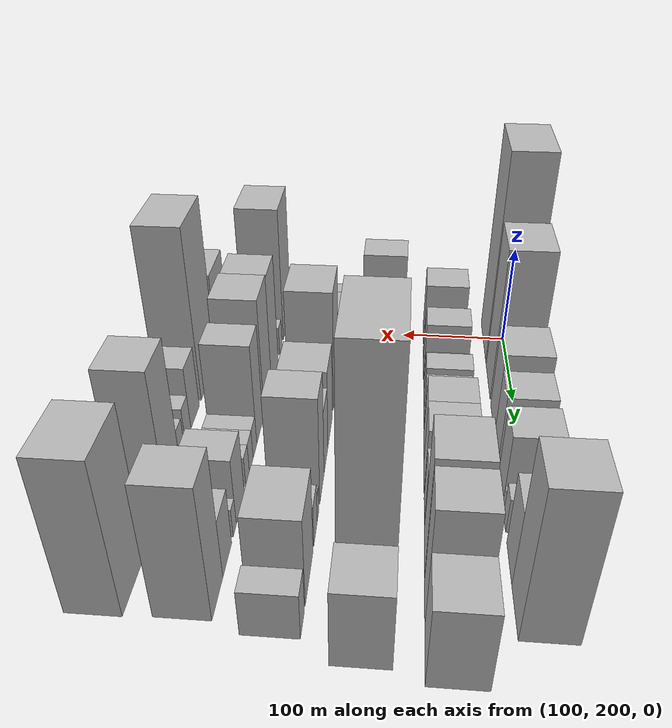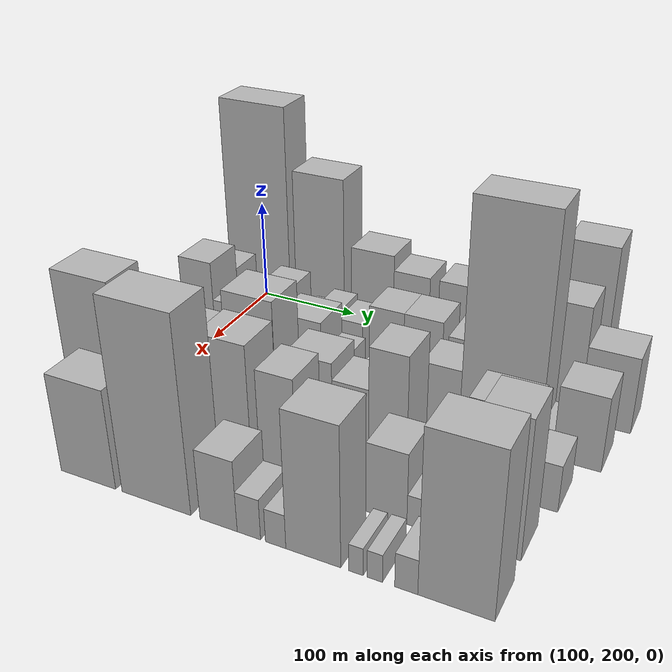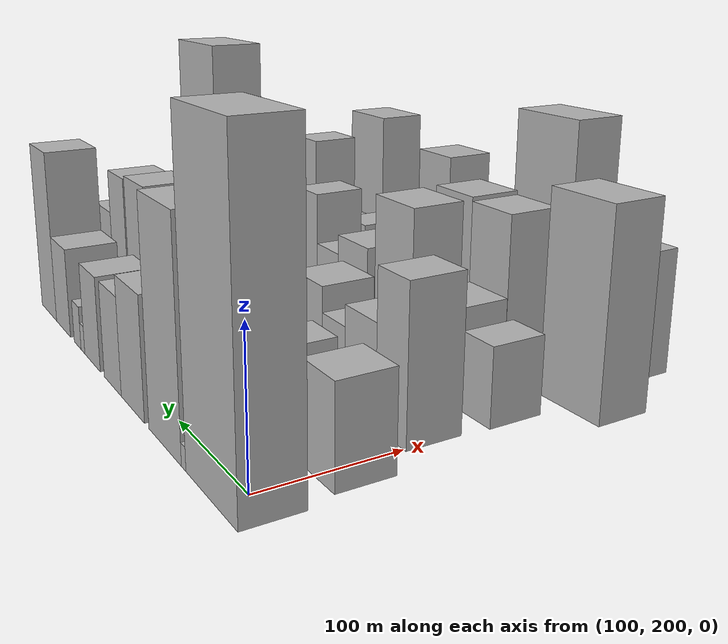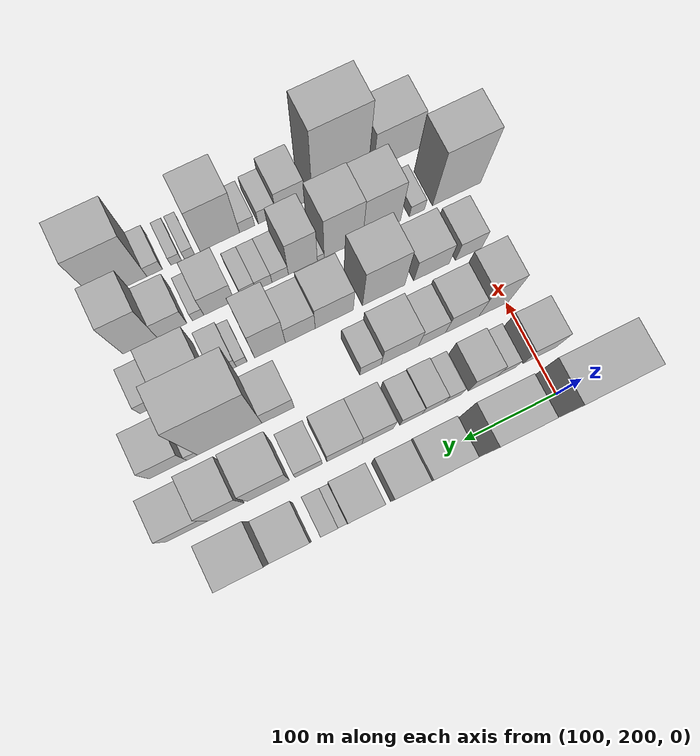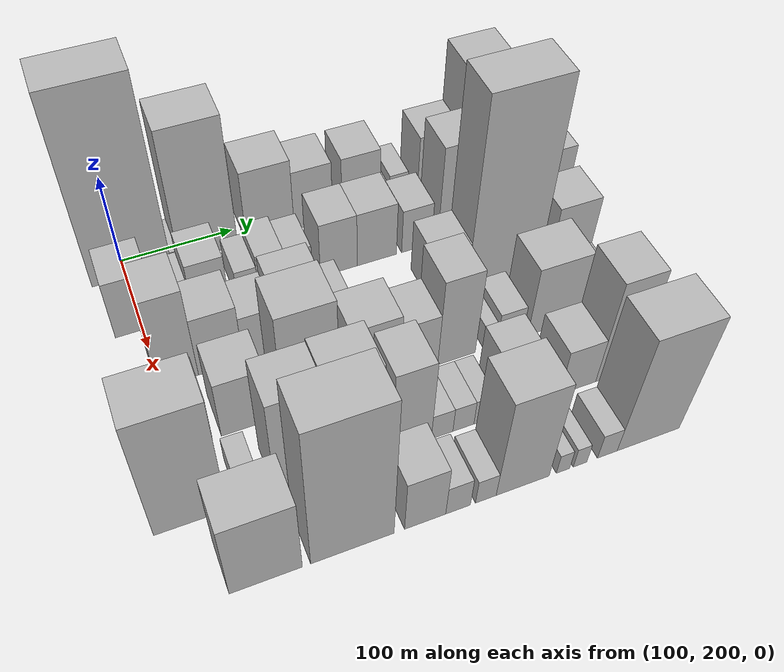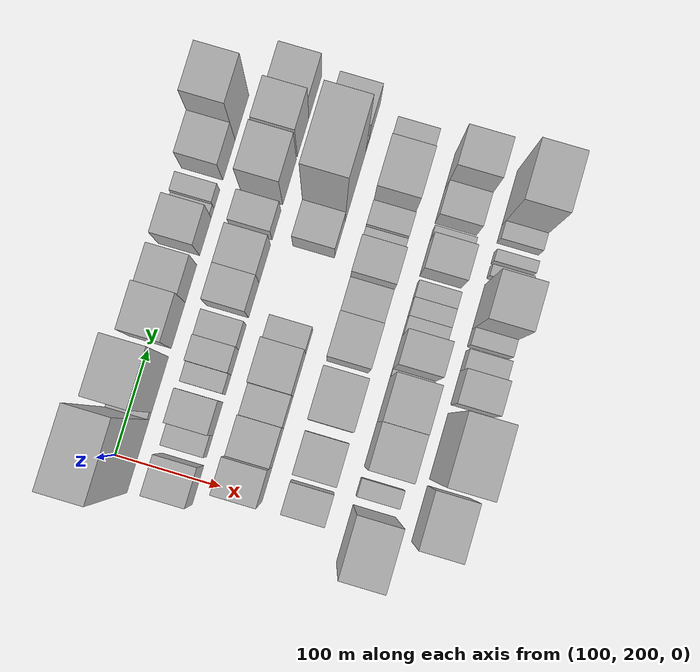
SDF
<sdf version="1.6">
 <world name="default">
  <model name="building_30">
   <static>1</static>
   <pose>100.0000 205.2229 0 0.000000 0.000000 0.000000</pose>
   <link name="link">
    <pose>0 0 105.00 0 0 0</pose>
    <collision name="collision"><geometry><box><size>40.0000 69.0760 210.0000</size></box></geometry></collision>
    <visual name="visual">
     <cast_shadows>0</cast_shadows>
     <geometry><box><size>40.0000 69.0760 210.0000</size></box></geometry>
     <material>
      <script>
       <uri>model://HANNAS_wall/materials/scripts</uri>
       <uri>model://HANNAS_wall/materials/textures</uri>
       <name>vrc/HANNAS_wall</name>
      </script>
     </material>
    </visual>
   </link>
  </model>
  <model name="building_31">
   <static>1</static>
   <pose>100.0000 243.1229 0 0.000000 0.000000 0.000000</pose>
   <link name="link">
    <pose>0 0 7.50 0 0 0</pose>
    <collision name="collision"><geometry><box><size>40.0000 6.7242 15.0000</size></box></geometry></collision>
    <visual name="visual">
     <cast_shadows>0</cast_shadows>
     <geometry><box><size>40.0000 6.7242 15.0000</size></box></geometry>
     <material>
      <script>
       <uri>model://HANNAS_wall/materials/scripts</uri>
       <uri>model://HANNAS_wall/materials/textures</uri>
       <name>vrc/HANNAS_wall</name>
      </script>
     </material>
    </visual>
   </link>
  </model>
  <model name="building_32">
   <static>1</static>
   <pose>100.0000 273.0305 0 0.000000 0.000000 0.000000</pose>
   <link name="link">
    <pose>0 0 75.00 0 0 0</pose>
    <collision name="collision"><geometry><box><size>40.0000 53.0909 150.0000</size></box></geometry></collision>
    <visual name="visual">
     <cast_shadows>0</cast_shadows>
     <geometry><box><size>40.0000 53.0909 150.0000</size></box></geometry>
     <material>
      <script>
       <uri>model://HANNAS_wall/materials/scripts</uri>
       <uri>model://HANNAS_wall/materials/textures</uri>
       <name>vrc/HANNAS_wall</name>
      </script>
     </material>
    </visual>
   </link>
  </model>
  <model name="building_33">
   <static>1</static>
   <pose>100.0000 329.7038 0 0.000000 0.000000 0.000000</pose>
   <link name="link">
    <pose>0 0 42.00 0 0 0</pose>
    <collision name="collision"><geometry><box><size>40.0000 44.2558 84.0000</size></box></geometry></collision>
    <visual name="visual">
     <cast_shadows>0</cast_shadows>
     <geometry><box><size>40.0000 44.2558 84.0000</size></box></geometry>
     <material>
      <script>
       <uri>model://HANNAS_wall/materials/scripts</uri>
       <uri>model://HANNAS_wall/materials/textures</uri>
       <name>vrc/HANNAS_wall</name>
      </script>
     </material>
    </visual>
   </link>
  </model>
  <model name="building_34">
   <static>1</static>
   <pose>100.0000 370.0031 0 0.000000 0.000000 0.000000</pose>
   <link name="link">
    <pose>0 0 34.50 0 0 0</pose>
    <collision name="collision"><geometry><box><size>40.0000 36.3429 69.0000</size></box></geometry></collision>
    <visual name="visual">
     <cast_shadows>0</cast_shadows>
     <geometry><box><size>40.0000 36.3429 69.0000</size></box></geometry>
     <material>
      <script>
       <uri>model://HANNAS_wall/materials/scripts</uri>
       <uri>model://HANNAS_wall/materials/textures</uri>
       <name>vrc/HANNAS_wall</name>
      </script>
     </material>
    </visual>
   </link>
  </model>
  <model name="building_35">
   <static>1</static>
   <pose>100.0000 415.5431 0 0.000000 0.000000 0.000000</pose>
   <link name="link">
    <pose>0 0 34.50 0 0 0</pose>
    <collision name="collision"><geometry><box><size>40.0000 36.7370 69.0000</size></box></geometry></collision>
    <visual name="visual">
     <cast_shadows>0</cast_shadows>
     <geometry><box><size>40.0000 36.7370 69.0000</size></box></geometry>
     <material>
      <script>
       <uri>model://HANNAS_wall/materials/scripts</uri>
       <uri>model://HANNAS_wall/materials/textures</uri>
       <name>vrc/HANNAS_wall</name>
      </script>
     </material>
    </visual>
   </link>
  </model>
  <model name="building_36">
   <static>1</static>
   <pose>100.0000 438.5779 0 0.000000 0.000000 0.000000</pose>
   <link name="link">
    <pose>0 0 10.50 0 0 0</pose>
    <collision name="collision"><geometry><box><size>40.0000 9.3328 21.0000</size></box></geometry></collision>
    <visual name="visual">
     <cast_shadows>0</cast_shadows>
     <geometry><box><size>40.0000 9.3328 21.0000</size></box></geometry>
     <material>
      <script>
       <uri>model://HANNAS_wall/materials/scripts</uri>
       <uri>model://HANNAS_wall/materials/textures</uri>
       <name>vrc/HANNAS_wall</name>
      </script>
     </material>
    </visual>
   </link>
  </model>
  <model name="building_37">
   <static>1</static>
   <pose>100.0000 452.0963 0 0.000000 0.000000 0.000000</pose>
   <link name="link">
    <pose>0 0 16.50 0 0 0</pose>
    <collision name="collision"><geometry><box><size>40.0000 17.7041 33.0000</size></box></geometry></collision>
    <visual name="visual">
     <cast_shadows>0</cast_shadows>
     <geometry><box><size>40.0000 17.7041 33.0000</size></box></geometry>
     <material>
      <script>
       <uri>model://HANNAS_wall/materials/scripts</uri>
       <uri>model://HANNAS_wall/materials/textures</uri>
       <name>vrc/HANNAS_wall</name>
      </script>
     </material>
    </visual>
   </link>
  </model>
  <model name="building_38">
   <static>1</static>
   <pose>100.0000 490.6179 0 0.000000 0.000000 0.000000</pose>
   <link name="link">
    <pose>0 0 34.50 0 0 0</pose>
    <collision name="collision"><geometry><box><size>40.0000 39.3390 69.0000</size></box></geometry></collision>
    <visual name="visual">
     <cast_shadows>0</cast_shadows>
     <geometry><box><size>40.0000 39.3390 69.0000</size></box></geometry>
     <material>
      <script>
       <uri>model://HANNAS_wall/materials/scripts</uri>
       <uri>model://HANNAS_wall/materials/textures</uri>
       <name>vrc/HANNAS_wall</name>
      </script>
     </material>
    </visual>
   </link>
  </model>
  <model name="building_39">
   <static>1</static>
   <pose>100.0000 532.4192 0 0.000000 0.000000 0.000000</pose>
   <link name="link">
    <pose>0 0 67.50 0 0 0</pose>
    <collision name="collision"><geometry><box><size>40.0000 44.2637 135.0000</size></box></geometry></collision>
    <visual name="visual">
     <cast_shadows>0</cast_shadows>
     <geometry><box><size>40.0000 44.2637 135.0000</size></box></geometry>
     <material>
      <script>
       <uri>model://HANNAS_wall/materials/scripts</uri>
       <uri>model://HANNAS_wall/materials/textures</uri>
       <name>vrc/HANNAS_wall</name>
      </script>
     </material>
    </visual>
   </link>
  </model>
  <model name="building_85">
   <static>1</static>
   <pose>160.0000 195.7724 0 0.000000 0.000000 0.000000</pose>
   <link name="link">
    <pose>0 0 33.00 0 0 0</pose>
    <collision name="collision"><geometry><box><size>40.0000 36.7277 66.0000</size></box></geometry></collision>
    <visual name="visual">
     <cast_shadows>0</cast_shadows>
     <geometry><box><size>40.0000 36.7277 66.0000</size></box></geometry>
     <material>
      <script>
       <uri>model://HANNAS_wall/materials/scripts</uri>
       <uri>model://HANNAS_wall/materials/textures</uri>
       <name>vrc/HANNAS_wall</name>
      </script>
     </material>
    </visual>
   </link>
  </model>
  <model name="building_86">
   <static>1</static>
   <pose>160.0000 232.3664 0 0.000000 0.000000 0.000000</pose>
   <link name="link">
    <pose>0 0 18.00 0 0 0</pose>
    <collision name="collision"><geometry><box><size>40.0000 20.4603 36.0000</size></box></geometry></collision>
    <visual name="visual">
     <cast_shadows>0</cast_shadows>
     <geometry><box><size>40.0000 20.4603 36.0000</size></box></geometry>
     <material>
      <script>
       <uri>model://HANNAS_wall/materials/scripts</uri>
       <uri>model://HANNAS_wall/materials/textures</uri>
       <name>vrc/HANNAS_wall</name>
      </script>
     </material>
    </visual>
   </link>
  </model>
  <model name="building_87">
   <static>1</static>
   <pose>160.0000 258.3127 0 0.000000 0.000000 0.000000</pose>
   <link name="link">
    <pose>0 0 30.00 0 0 0</pose>
    <collision name="collision"><geometry><box><size>40.0000 31.4322 60.0000</size></box></geometry></collision>
    <visual name="visual">
     <cast_shadows>0</cast_shadows>
     <geometry><box><size>40.0000 31.4322 60.0000</size></box></geometry>
     <material>
      <script>
       <uri>model://HANNAS_wall/materials/scripts</uri>
       <uri>model://HANNAS_wall/materials/textures</uri>
       <name>vrc/HANNAS_wall</name>
      </script>
     </material>
    </visual>
   </link>
  </model>
  <model name="building_88">
   <static>1</static>
   <pose>160.0000 290.3565 0 0.000000 0.000000 0.000000</pose>
   <link name="link">
    <pose>0 0 18.00 0 0 0</pose>
    <collision name="collision"><geometry><box><size>40.0000 18.6553 36.0000</size></box></geometry></collision>
    <visual name="visual">
     <cast_shadows>0</cast_shadows>
     <geometry><box><size>40.0000 18.6553 36.0000</size></box></geometry>
     <material>
      <script>
       <uri>model://HANNAS_wall/materials/scripts</uri>
       <uri>model://HANNAS_wall/materials/textures</uri>
       <name>vrc/HANNAS_wall</name>
      </script>
     </material>
    </visual>
   </link>
  </model>
  <model name="building_89">
   <static>1</static>
   <pose>160.0000 311.7217 0 0.000000 0.000000 0.000000</pose>
   <link name="link">
    <pose>0 0 24.00 0 0 0</pose>
    <collision name="collision"><geometry><box><size>40.0000 24.0751 48.0000</size></box></geometry></collision>
    <visual name="visual">
     <cast_shadows>0</cast_shadows>
     <geometry><box><size>40.0000 24.0751 48.0000</size></box></geometry>
     <material>
      <script>
       <uri>model://HANNAS_wall/materials/scripts</uri>
       <uri>model://HANNAS_wall/materials/textures</uri>
       <name>vrc/HANNAS_wall</name>
      </script>
     </material>
    </visual>
   </link>
  </model>
  <model name="building_90">
   <static>1</static>
   <pose>160.0000 335.7369 0 0.000000 0.000000 0.000000</pose>
   <link name="link">
    <pose>0 0 21.00 0 0 0</pose>
    <collision name="collision"><geometry><box><size>40.0000 23.9553 42.0000</size></box></geometry></collision>
    <visual name="visual">
     <cast_shadows>0</cast_shadows>
     <geometry><box><size>40.0000 23.9553 42.0000</size></box></geometry>
     <material>
      <script>
       <uri>model://HANNAS_wall/materials/scripts</uri>
       <uri>model://HANNAS_wall/materials/textures</uri>
       <name>vrc/HANNAS_wall</name>
      </script>
     </material>
    </visual>
   </link>
  </model>
  <model name="building_91">
   <static>1</static>
   <pose>160.0000 371.5109 0 0.000000 0.000000 0.000000</pose>
   <link name="link">
    <pose>0 0 31.50 0 0 0</pose>
    <collision name="collision"><geometry><box><size>40.0000 33.5928 63.0000</size></box></geometry></collision>
    <visual name="visual">
     <cast_shadows>0</cast_shadows>
     <geometry><box><size>40.0000 33.5928 63.0000</size></box></geometry>
     <material>
      <script>
       <uri>model://HANNAS_wall/materials/scripts</uri>
       <uri>model://HANNAS_wall/materials/textures</uri>
       <name>vrc/HANNAS_wall</name>
      </script>
     </material>
    </visual>
   </link>
  </model>
  <model name="building_92">
   <static>1</static>
   <pose>160.0000 406.6775 0 0.000000 0.000000 0.000000</pose>
   <link name="link">
    <pose>0 0 31.50 0 0 0</pose>
    <collision name="collision"><geometry><box><size>40.0000 36.7403 63.0000</size></box></geometry></collision>
    <visual name="visual">
     <cast_shadows>0</cast_shadows>
     <geometry><box><size>40.0000 36.7403 63.0000</size></box></geometry>
     <material>
      <script>
       <uri>model://HANNAS_wall/materials/scripts</uri>
       <uri>model://HANNAS_wall/materials/textures</uri>
       <name>vrc/HANNAS_wall</name>
      </script>
     </material>
    </visual>
   </link>
  </model>
  <model name="building_93">
   <static>1</static>
   <pose>160.0000 444.2434 0 0.000000 0.000000 0.000000</pose>
   <link name="link">
    <pose>0 0 25.50 0 0 0</pose>
    <collision name="collision"><geometry><box><size>40.0000 28.3917 51.0000</size></box></geometry></collision>
    <visual name="visual">
     <cast_shadows>0</cast_shadows>
     <geometry><box><size>40.0000 28.3917 51.0000</size></box></geometry>
     <material>
      <script>
       <uri>model://HANNAS_wall/materials/scripts</uri>
       <uri>model://HANNAS_wall/materials/textures</uri>
       <name>vrc/HANNAS_wall</name>
      </script>
     </material>
    </visual>
   </link>
  </model>
  <model name="building_94">
   <static>1</static>
   <pose>160.0000 486.4557 0 0.000000 0.000000 0.000000</pose>
   <link name="link">
    <pose>0 0 55.50 0 0 0</pose>
    <collision name="collision"><geometry><box><size>40.0000 44.0329 111.0000</size></box></geometry></collision>
    <visual name="visual">
     <cast_shadows>0</cast_shadows>
     <geometry><box><size>40.0000 44.0329 111.0000</size></box></geometry>
     <material>
      <script>
       <uri>model://HANNAS_wall/materials/scripts</uri>
       <uri>model://HANNAS_wall/materials/textures</uri>
       <name>vrc/HANNAS_wall</name>
      </script>
     </material>
    </visual>
   </link>
  </model>
  <model name="building_95">
   <static>1</static>
   <pose>160.0000 530.3487 0 0.000000 0.000000 0.000000</pose>
   <link name="link">
    <pose>0 0 54.00 0 0 0</pose>
    <collision name="collision"><geometry><box><size>40.0000 37.7530 108.0000</size></box></geometry></collision>
    <visual name="visual">
     <cast_shadows>0</cast_shadows>
     <geometry><box><size>40.0000 37.7530 108.0000</size></box></geometry>
     <material>
      <script>
       <uri>model://HANNAS_wall/materials/scripts</uri>
       <uri>model://HANNAS_wall/materials/textures</uri>
       <name>vrc/HANNAS_wall</name>
      </script>
     </material>
    </visual>
   </link>
  </model>
  <model name="building_96">
   <static>1</static>
   <pose>160.0000 570.6034 0 0.000000 0.000000 0.000000</pose>
   <link name="link">
    <pose>0 0 36.00 0 0 0</pose>
    <collision name="collision"><geometry><box><size>40.0000 42.7565 72.0000</size></box></geometry></collision>
    <visual name="visual">
     <cast_shadows>0</cast_shadows>
     <geometry><box><size>40.0000 42.7565 72.0000</size></box></geometry>
     <material>
      <script>
       <uri>model://HANNAS_wall/materials/scripts</uri>
       <uri>model://HANNAS_wall/materials/textures</uri>
       <name>vrc/HANNAS_wall</name>
      </script>
     </material>
    </visual>
   </link>
  </model>
  <model name="building_144">
   <static>1</static>
   <pose>220.0000 214.1536 0 0.000000 0.000000 0.000000</pose>
   <link name="link">
    <pose>0 0 52.50 0 0 0</pose>
    <collision name="collision"><geometry><box><size>40.0000 32.9572 105.0000</size></box></geometry></collision>
    <visual name="visual">
     <cast_shadows>0</cast_shadows>
     <geometry><box><size>40.0000 32.9572 105.0000</size></box></geometry>
     <material>
      <script>
       <uri>model://HANNAS_wall/materials/scripts</uri>
       <uri>model://HANNAS_wall/materials/textures</uri>
       <name>vrc/HANNAS_wall</name>
      </script>
     </material>
    </visual>
   </link>
  </model>
  <model name="building_145">
   <static>1</static>
   <pose>220.0000 249.0375 0 0.000000 0.000000 0.000000</pose>
   <link name="link">
    <pose>0 0 34.50 0 0 0</pose>
    <collision name="collision"><geometry><box><size>40.0000 36.8106 69.0000</size></box></geometry></collision>
    <visual name="visual">
     <cast_shadows>0</cast_shadows>
     <geometry><box><size>40.0000 36.8106 69.0000</size></box></geometry>
     <material>
      <script>
       <uri>model://HANNAS_wall/materials/scripts</uri>
       <uri>model://HANNAS_wall/materials/textures</uri>
       <name>vrc/HANNAS_wall</name>
      </script>
     </material>
    </visual>
   </link>
  </model>
  <model name="building_146">
   <static>1</static>
   <pose>220.0000 282.0529 0 0.000000 0.000000 0.000000</pose>
   <link name="link">
    <pose>0 0 27.00 0 0 0</pose>
    <collision name="collision"><geometry><box><size>40.0000 29.2202 54.0000</size></box></geometry></collision>
    <visual name="visual">
     <cast_shadows>0</cast_shadows>
     <geometry><box><size>40.0000 29.2202 54.0000</size></box></geometry>
     <material>
      <script>
       <uri>model://HANNAS_wall/materials/scripts</uri>
       <uri>model://HANNAS_wall/materials/textures</uri>
       <name>vrc/HANNAS_wall</name>
      </script>
     </material>
    </visual>
   </link>
  </model>
  <model name="building_147">
   <static>1</static>
   <pose>220.0000 317.0408 0 0.000000 0.000000 0.000000</pose>
   <link name="link">
    <pose>0 0 36.00 0 0 0</pose>
    <collision name="collision"><geometry><box><size>40.0000 40.7558 72.0000</size></box></geometry></collision>
    <visual name="visual">
     <cast_shadows>0</cast_shadows>
     <geometry><box><size>40.0000 40.7558 72.0000</size></box></geometry>
     <material>
      <script>
       <uri>model://HANNAS_wall/materials/scripts</uri>
       <uri>model://HANNAS_wall/materials/textures</uri>
       <name>vrc/HANNAS_wall</name>
      </script>
     </material>
    </visual>
   </link>
  </model>
  <model name="building_148">
   <static>1</static>
   <pose>220.0000 348.8580 0 0.000000 0.000000 0.000000</pose>
   <link name="link">
    <pose>0 0 21.00 0 0 0</pose>
    <collision name="collision"><geometry><box><size>40.0000 22.8786 42.0000</size></box></geometry></collision>
    <visual name="visual">
     <cast_shadows>0</cast_shadows>
     <geometry><box><size>40.0000 22.8786 42.0000</size></box></geometry>
     <material>
      <script>
       <uri>model://HANNAS_wall/materials/scripts</uri>
       <uri>model://HANNAS_wall/materials/textures</uri>
       <name>vrc/HANNAS_wall</name>
      </script>
     </material>
    </visual>
   </link>
  </model>
  <model name="building_149">
   <static>1</static>
   <pose>220.0000 447.3323 0 0.000000 0.000000 0.000000</pose>
   <link name="link">
    <pose>0 0 30.00 0 0 0</pose>
    <collision name="collision"><geometry><box><size>40.0000 34.0234 60.0000</size></box></geometry></collision>
    <visual name="visual">
     <cast_shadows>0</cast_shadows>
     <geometry><box><size>40.0000 34.0234 60.0000</size></box></geometry>
     <material>
      <script>
       <uri>model://HANNAS_wall/materials/scripts</uri>
       <uri>model://HANNAS_wall/materials/textures</uri>
       <name>vrc/HANNAS_wall</name>
      </script>
     </material>
    </visual>
   </link>
  </model>
  <model name="building_150">
   <static>1</static>
   <pose>220.0000 498.2375 0 0.000000 0.000000 0.000000</pose>
   <link name="link">
    <pose>0 0 106.50 0 0 0</pose>
    <collision name="collision"><geometry><box><size>40.0000 67.7870 213.0000</size></box></geometry></collision>
    <visual name="visual">
     <cast_shadows>0</cast_shadows>
     <geometry><box><size>40.0000 67.7870 213.0000</size></box></geometry>
     <material>
      <script>
       <uri>model://HANNAS_wall/materials/scripts</uri>
       <uri>model://HANNAS_wall/materials/textures</uri>
       <name>vrc/HANNAS_wall</name>
      </script>
     </material>
    </visual>
   </link>
  </model>
  <model name="building_151">
   <static>1</static>
   <pose>220.0000 537.6468 0 0.000000 0.000000 0.000000</pose>
   <link name="link">
    <pose>0 0 13.50 0 0 0</pose>
    <collision name="collision"><geometry><box><size>40.0000 11.0316 27.0000</size></box></geometry></collision>
    <visual name="visual">
     <cast_shadows>0</cast_shadows>
     <geometry><box><size>40.0000 11.0316 27.0000</size></box></geometry>
     <material>
      <script>
       <uri>model://HANNAS_wall/materials/scripts</uri>
       <uri>model://HANNAS_wall/materials/textures</uri>
       <name>vrc/HANNAS_wall</name>
      </script>
     </material>
    </visual>
   </link>
  </model>
  <model name="building_152">
   <static>1</static>
   <pose>220.0000 562.6870 0 0.000000 0.000000 0.000000</pose>
   <link name="link">
    <pose>0 0 34.50 0 0 0</pose>
    <collision name="collision"><geometry><box><size>40.0000 39.0488 69.0000</size></box></geometry></collision>
    <visual name="visual">
     <cast_shadows>0</cast_shadows>
     <geometry><box><size>40.0000 39.0488 69.0000</size></box></geometry>
     <material>
      <script>
       <uri>model://HANNAS_wall/materials/scripts</uri>
       <uri>model://HANNAS_wall/materials/textures</uri>
       <name>vrc/HANNAS_wall</name>
      </script>
     </material>
    </visual>
   </link>
  </model>
  <model name="building_195">
   <static>1</static>
   <pose>280.0000 210.0441 0 0.000000 0.000000 0.000000</pose>
   <link name="link">
    <pose>0 0 27.00 0 0 0</pose>
    <collision name="collision"><geometry><box><size>40.0000 29.4144 54.0000</size></box></geometry></collision>
    <visual name="visual">
     <cast_shadows>0</cast_shadows>
     <geometry><box><size>40.0000 29.4144 54.0000</size></box></geometry>
     <material>
      <script>
       <uri>model://HANNAS_wall/materials/scripts</uri>
       <uri>model://HANNAS_wall/materials/textures</uri>
       <name>vrc/HANNAS_wall</name>
      </script>
     </material>
    </visual>
   </link>
  </model>
  <model name="building_196">
   <static>1</static>
   <pose>280.0000 251.2986 0 0.000000 0.000000 0.000000</pose>
   <link name="link">
    <pose>0 0 33.00 0 0 0</pose>
    <collision name="collision"><geometry><box><size>40.0000 39.0946 66.0000</size></box></geometry></collision>
    <visual name="visual">
     <cast_shadows>0</cast_shadows>
     <geometry><box><size>40.0000 39.0946 66.0000</size></box></geometry>
     <material>
      <script>
       <uri>model://HANNAS_wall/materials/scripts</uri>
       <uri>model://HANNAS_wall/materials/textures</uri>
       <name>vrc/HANNAS_wall</name>
      </script>
     </material>
    </visual>
   </link>
  </model>
  <model name="building_197">
   <static>1</static>
   <pose>280.0000 303.9945 0 0.000000 0.000000 0.000000</pose>
   <link name="link">
    <pose>0 0 60.00 0 0 0</pose>
    <collision name="collision"><geometry><box><size>40.0000 46.2973 120.0000</size></box></geometry></collision>
    <visual name="visual">
     <cast_shadows>0</cast_shadows>
     <geometry><box><size>40.0000 46.2973 120.0000</size></box></geometry>
     <material>
      <script>
       <uri>model://HANNAS_wall/materials/scripts</uri>
       <uri>model://HANNAS_wall/materials/textures</uri>
       <name>vrc/HANNAS_wall</name>
      </script>
     </material>
    </visual>
   </link>
  </model>
  <model name="building_198">
   <static>1</static>
   <pose>280.0000 357.7525 0 0.000000 0.000000 0.000000</pose>
   <link name="link">
    <pose>0 0 39.00 0 0 0</pose>
    <collision name="collision"><geometry><box><size>40.0000 41.2187 78.0000</size></box></geometry></collision>
    <visual name="visual">
     <cast_shadows>0</cast_shadows>
     <geometry><box><size>40.0000 41.2187 78.0000</size></box></geometry>
     <material>
      <script>
       <uri>model://HANNAS_wall/materials/scripts</uri>
       <uri>model://HANNAS_wall/materials/textures</uri>
       <name>vrc/HANNAS_wall</name>
      </script>
     </material>
    </visual>
   </link>
  </model>
  <model name="building_199">
   <static>1</static>
   <pose>280.0000 394.4017 0 0.000000 0.000000 0.000000</pose>
   <link name="link">
    <pose>0 0 31.50 0 0 0</pose>
    <collision name="collision"><geometry><box><size>40.0000 32.0796 63.0000</size></box></geometry></collision>
    <visual name="visual">
     <cast_shadows>0</cast_shadows>
     <geometry><box><size>40.0000 32.0796 63.0000</size></box></geometry>
     <material>
      <script>
       <uri>model://HANNAS_wall/materials/scripts</uri>
       <uri>model://HANNAS_wall/materials/textures</uri>
       <name>vrc/HANNAS_wall</name>
      </script>
     </material>
    </visual>
   </link>
  </model>
  <model name="building_200">
   <static>1</static>
   <pose>280.0000 426.9178 0 0.000000 0.000000 0.000000</pose>
   <link name="link">
    <pose>0 0 51.00 0 0 0</pose>
    <collision name="collision"><geometry><box><size>40.0000 32.9526 102.0000</size></box></geometry></collision>
    <visual name="visual">
     <cast_shadows>0</cast_shadows>
     <geometry><box><size>40.0000 32.9526 102.0000</size></box></geometry>
     <material>
      <script>
       <uri>model://HANNAS_wall/materials/scripts</uri>
       <uri>model://HANNAS_wall/materials/textures</uri>
       <name>vrc/HANNAS_wall</name>
      </script>
     </material>
    </visual>
   </link>
  </model>
  <model name="building_201">
   <static>1</static>
   <pose>280.0000 457.0982 0 0.000000 0.000000 0.000000</pose>
   <link name="link">
    <pose>0 0 13.50 0 0 0</pose>
    <collision name="collision"><geometry><box><size>40.0000 11.4082 27.0000</size></box></geometry></collision>
    <visual name="visual">
     <cast_shadows>0</cast_shadows>
     <geometry><box><size>40.0000 11.4082 27.0000</size></box></geometry>
     <material>
      <script>
       <uri>model://HANNAS_wall/materials/scripts</uri>
       <uri>model://HANNAS_wall/materials/textures</uri>
       <name>vrc/HANNAS_wall</name>
      </script>
     </material>
    </visual>
   </link>
  </model>
  <model name="building_202">
   <static>1</static>
   <pose>280.0000 474.3703 0 0.000000 0.000000 0.000000</pose>
   <link name="link">
    <pose>0 0 19.50 0 0 0</pose>
    <collision name="collision"><geometry><box><size>40.0000 23.1361 39.0000</size></box></geometry></collision>
    <visual name="visual">
     <cast_shadows>0</cast_shadows>
     <geometry><box><size>40.0000 23.1361 39.0000</size></box></geometry>
     <material>
      <script>
       <uri>model://HANNAS_wall/materials/scripts</uri>
       <uri>model://HANNAS_wall/materials/textures</uri>
       <name>vrc/HANNAS_wall</name>
      </script>
     </material>
    </visual>
   </link>
  </model>
  <model name="building_203">
   <static>1</static>
   <pose>280.0000 514.9056 0 0.000000 0.000000 0.000000</pose>
   <link name="link">
    <pose>0 0 40.50 0 0 0</pose>
    <collision name="collision"><geometry><box><size>40.0000 47.9344 81.0000</size></box></geometry></collision>
    <visual name="visual">
     <cast_shadows>0</cast_shadows>
     <geometry><box><size>40.0000 47.9344 81.0000</size></box></geometry>
     <material>
      <script>
       <uri>model://HANNAS_wall/materials/scripts</uri>
       <uri>model://HANNAS_wall/materials/textures</uri>
       <name>vrc/HANNAS_wall</name>
      </script>
     </material>
    </visual>
   </link>
  </model>
  <model name="building_204">
   <static>1</static>
   <pose>280.0000 553.7370 0 0.000000 0.000000 0.000000</pose>
   <link name="link">
    <pose>0 0 21.00 0 0 0</pose>
    <collision name="collision"><geometry><box><size>40.0000 21.7285 42.0000</size></box></geometry></collision>
    <visual name="visual">
     <cast_shadows>0</cast_shadows>
     <geometry><box><size>40.0000 21.7285 42.0000</size></box></geometry>
     <material>
      <script>
       <uri>model://HANNAS_wall/materials/scripts</uri>
       <uri>model://HANNAS_wall/materials/textures</uri>
       <name>vrc/HANNAS_wall</name>
      </script>
     </material>
    </visual>
   </link>
  </model>
  <model name="building_240">
   <static>1</static>
   <pose>340.0000 191.8037 0 0.000000 0.000000 0.000000</pose>
   <link name="link">
    <pose>0 0 70.50 0 0 0</pose>
    <collision name="collision"><geometry><box><size>40.0000 54.1023 141.0000</size></box></geometry></collision>
    <visual name="visual">
     <cast_shadows>0</cast_shadows>
     <geometry><box><size>40.0000 54.1023 141.0000</size></box></geometry>
     <material>
      <script>
       <uri>model://HANNAS_wall/materials/scripts</uri>
       <uri>model://HANNAS_wall/materials/textures</uri>
       <name>vrc/HANNAS_wall</name>
      </script>
     </material>
    </visual>
   </link>
  </model>
  <model name="building_241">
   <static>1</static>
   <pose>340.0000 236.3310 0 0.000000 0.000000 0.000000</pose>
   <link name="link">
    <pose>0 0 15.00 0 0 0</pose>
    <collision name="collision"><geometry><box><size>40.0000 16.9522 30.0000</size></box></geometry></collision>
    <visual name="visual">
     <cast_shadows>0</cast_shadows>
     <geometry><box><size>40.0000 16.9522 30.0000</size></box></geometry>
     <material>
      <script>
       <uri>model://HANNAS_wall/materials/scripts</uri>
       <uri>model://HANNAS_wall/materials/textures</uri>
       <name>vrc/HANNAS_wall</name>
      </script>
     </material>
    </visual>
   </link>
  </model>
  <model name="building_242">
   <static>1</static>
   <pose>340.0000 275.6879 0 0.000000 0.000000 0.000000</pose>
   <link name="link">
    <pose>0 0 57.00 0 0 0</pose>
    <collision name="collision"><geometry><box><size>40.0000 41.7618 114.0000</size></box></geometry></collision>
    <visual name="visual">
     <cast_shadows>0</cast_shadows>
     <geometry><box><size>40.0000 41.7618 114.0000</size></box></geometry>
     <material>
      <script>
       <uri>model://HANNAS_wall/materials/scripts</uri>
       <uri>model://HANNAS_wall/materials/textures</uri>
       <name>vrc/HANNAS_wall</name>
      </script>
     </material>
    </visual>
   </link>
  </model>
  <model name="building_243">
   <static>1</static>
   <pose>340.0000 317.8466 0 0.000000 0.000000 0.000000</pose>
   <link name="link">
    <pose>0 0 58.50 0 0 0</pose>
    <collision name="collision"><geometry><box><size>40.0000 42.5556 117.0000</size></box></geometry></collision>
    <visual name="visual">
     <cast_shadows>0</cast_shadows>
     <geometry><box><size>40.0000 42.5556 117.0000</size></box></geometry>
     <material>
      <script>
       <uri>model://HANNAS_wall/materials/scripts</uri>
       <uri>model://HANNAS_wall/materials/textures</uri>
       <name>vrc/HANNAS_wall</name>
      </script>
     </material>
    </visual>
   </link>
  </model>
  <model name="building_244">
   <static>1</static>
   <pose>340.0000 342.8447 0 0.000000 0.000000 0.000000</pose>
   <link name="link">
    <pose>0 0 7.50 0 0 0</pose>
    <collision name="collision"><geometry><box><size>40.0000 7.4406 15.0000</size></box></geometry></collision>
    <visual name="visual">
     <cast_shadows>0</cast_shadows>
     <geometry><box><size>40.0000 7.4406 15.0000</size></box></geometry>
     <material>
      <script>
       <uri>model://HANNAS_wall/materials/scripts</uri>
       <uri>model://HANNAS_wall/materials/textures</uri>
       <name>vrc/HANNAS_wall</name>
      </script>
     </material>
    </visual>
   </link>
  </model>
  <model name="building_245">
   <static>1</static>
   <pose>340.0000 362.3451 0 0.000000 0.000000 0.000000</pose>
   <link name="link">
    <pose>0 0 49.50 0 0 0</pose>
    <collision name="collision"><geometry><box><size>40.0000 31.5602 99.0000</size></box></geometry></collision>
    <visual name="visual">
     <cast_shadows>0</cast_shadows>
     <geometry><box><size>40.0000 31.5602 99.0000</size></box></geometry>
     <material>
      <script>
       <uri>model://HANNAS_wall/materials/scripts</uri>
       <uri>model://HANNAS_wall/materials/textures</uri>
       <name>vrc/HANNAS_wall</name>
      </script>
     </material>
    </visual>
   </link>
  </model>
  <model name="building_246">
   <static>1</static>
   <pose>340.0000 387.0429 0 0.000000 0.000000 0.000000</pose>
   <link name="link">
    <pose>0 0 15.00 0 0 0</pose>
    <collision name="collision"><geometry><box><size>40.0000 17.8353 30.0000</size></box></geometry></collision>
    <visual name="visual">
     <cast_shadows>0</cast_shadows>
     <geometry><box><size>40.0000 17.8353 30.0000</size></box></geometry>
     <material>
      <script>
       <uri>model://HANNAS_wall/materials/scripts</uri>
       <uri>model://HANNAS_wall/materials/textures</uri>
       <name>vrc/HANNAS_wall</name>
      </script>
     </material>
    </visual>
   </link>
  </model>
  <model name="building_247">
   <static>1</static>
   <pose>340.0000 404.7442 0 0.000000 0.000000 0.000000</pose>
   <link name="link">
    <pose>0 0 15.00 0 0 0</pose>
    <collision name="collision"><geometry><box><size>40.0000 17.5674 30.0000</size></box></geometry></collision>
    <visual name="visual">
     <cast_shadows>0</cast_shadows>
     <geometry><box><size>40.0000 17.5674 30.0000</size></box></geometry>
     <material>
      <script>
       <uri>model://HANNAS_wall/materials/scripts</uri>
       <uri>model://HANNAS_wall/materials/textures</uri>
       <name>vrc/HANNAS_wall</name>
      </script>
     </material>
    </visual>
   </link>
  </model>
  <model name="building_248">
   <static>1</static>
   <pose>340.0000 421.4688 0 0.000000 0.000000 0.000000</pose>
   <link name="link">
    <pose>0 0 15.00 0 0 0</pose>
    <collision name="collision"><geometry><box><size>40.0000 15.8818 30.0000</size></box></geometry></collision>
    <visual name="visual">
     <cast_shadows>0</cast_shadows>
     <geometry><box><size>40.0000 15.8818 30.0000</size></box></geometry>
     <material>
      <script>
       <uri>model://HANNAS_wall/materials/scripts</uri>
       <uri>model://HANNAS_wall/materials/textures</uri>
       <name>vrc/HANNAS_wall</name>
      </script>
     </material>
    </visual>
   </link>
  </model>
  <model name="building_249">
   <static>1</static>
   <pose>340.0000 452.8849 0 0.000000 0.000000 0.000000</pose>
   <link name="link">
    <pose>0 0 31.50 0 0 0</pose>
    <collision name="collision"><geometry><box><size>40.0000 32.9504 63.0000</size></box></geometry></collision>
    <visual name="visual">
     <cast_shadows>0</cast_shadows>
     <geometry><box><size>40.0000 32.9504 63.0000</size></box></geometry>
     <material>
      <script>
       <uri>model://HANNAS_wall/materials/scripts</uri>
       <uri>model://HANNAS_wall/materials/textures</uri>
       <name>vrc/HANNAS_wall</name>
      </script>
     </material>
    </visual>
   </link>
  </model>
  <model name="building_250">
   <static>1</static>
   <pose>340.0000 475.5048 0 0.000000 0.000000 0.000000</pose>
   <link name="link">
    <pose>0 0 13.50 0 0 0</pose>
    <collision name="collision"><geometry><box><size>40.0000 12.2894 27.0000</size></box></geometry></collision>
    <visual name="visual">
     <cast_shadows>0</cast_shadows>
     <geometry><box><size>40.0000 12.2894 27.0000</size></box></geometry>
     <material>
      <script>
       <uri>model://HANNAS_wall/materials/scripts</uri>
       <uri>model://HANNAS_wall/materials/textures</uri>
       <name>vrc/HANNAS_wall</name>
      </script>
     </material>
    </visual>
   </link>
  </model>
  <model name="building_251">
   <static>1</static>
   <pose>340.0000 503.5133 0 0.000000 0.000000 0.000000</pose>
   <link name="link">
    <pose>0 0 27.00 0 0 0</pose>
    <collision name="collision"><geometry><box><size>40.0000 31.7276 54.0000</size></box></geometry></collision>
    <visual name="visual">
     <cast_shadows>0</cast_shadows>
     <geometry><box><size>40.0000 31.7276 54.0000</size></box></geometry>
     <material>
      <script>
       <uri>model://HANNAS_wall/materials/scripts</uri>
       <uri>model://HANNAS_wall/materials/textures</uri>
       <name>vrc/HANNAS_wall</name>
      </script>
     </material>
    </visual>
   </link>
  </model>
  <model name="building_252">
   <static>1</static>
   <pose>340.0000 537.4302 0 0.000000 0.000000 0.000000</pose>
   <link name="link">
    <pose>0 0 60.00 0 0 0</pose>
    <collision name="collision"><geometry><box><size>40.0000 36.1062 120.0000</size></box></geometry></collision>
    <visual name="visual">
     <cast_shadows>0</cast_shadows>
     <geometry><box><size>40.0000 36.1062 120.0000</size></box></geometry>
     <material>
      <script>
       <uri>model://HANNAS_wall/materials/scripts</uri>
       <uri>model://HANNAS_wall/materials/textures</uri>
       <name>vrc/HANNAS_wall</name>
      </script>
     </material>
    </visual>
   </link>
  </model>
  <model name="building_298">
   <static>1</static>
   <pose>400.0000 228.2446 0 0.000000 0.000000 0.000000</pose>
   <link name="link">
    <pose>0 0 45.00 0 0 0</pose>
    <collision name="collision"><geometry><box><size>40.0000 52.4330 90.0000</size></box></geometry></collision>
    <visual name="visual">
     <cast_shadows>0</cast_shadows>
     <geometry><box><size>40.0000 52.4330 90.0000</size></box></geometry>
     <material>
      <script>
       <uri>model://HANNAS_wall/materials/scripts</uri>
       <uri>model://HANNAS_wall/materials/textures</uri>
       <name>vrc/HANNAS_wall</name>
      </script>
     </material>
    </visual>
   </link>
  </model>
  <model name="building_299">
   <static>1</static>
   <pose>400.0000 291.5992 0 0.000000 0.000000 0.000000</pose>
   <link name="link">
    <pose>0 0 85.50 0 0 0</pose>
    <collision name="collision"><geometry><box><size>40.0000 62.2761 171.0000</size></box></geometry></collision>
    <visual name="visual">
     <cast_shadows>0</cast_shadows>
     <geometry><box><size>40.0000 62.2761 171.0000</size></box></geometry>
     <material>
      <script>
       <uri>model://HANNAS_wall/materials/scripts</uri>
       <uri>model://HANNAS_wall/materials/textures</uri>
       <name>vrc/HANNAS_wall</name>
      </script>
     </material>
    </visual>
   </link>
  </model>
  <model name="building_300">
   <static>1</static>
   <pose>400.0000 346.6698 0 0.000000 0.000000 0.000000</pose>
   <link name="link">
    <pose>0 0 31.50 0 0 0</pose>
    <collision name="collision"><geometry><box><size>40.0000 31.8651 63.0000</size></box></geometry></collision>
    <visual name="visual">
     <cast_shadows>0</cast_shadows>
     <geometry><box><size>40.0000 31.8651 63.0000</size></box></geometry>
     <material>
      <script>
       <uri>model://HANNAS_wall/materials/scripts</uri>
       <uri>model://HANNAS_wall/materials/textures</uri>
       <name>vrc/HANNAS_wall</name>
      </script>
     </material>
    </visual>
   </link>
  </model>
  <model name="building_301">
   <static>1</static>
   <pose>400.0000 372.3253 0 0.000000 0.000000 0.000000</pose>
   <link name="link">
    <pose>0 0 18.00 0 0 0</pose>
    <collision name="collision"><geometry><box><size>40.0000 19.4460 36.0000</size></box></geometry></collision>
    <visual name="visual">
     <cast_shadows>0</cast_shadows>
     <geometry><box><size>40.0000 19.4460 36.0000</size></box></geometry>
     <material>
      <script>
       <uri>model://HANNAS_wall/materials/scripts</uri>
       <uri>model://HANNAS_wall/materials/textures</uri>
       <name>vrc/HANNAS_wall</name>
      </script>
     </material>
    </visual>
   </link>
  </model>
  <model name="building_302">
   <static>1</static>
   <pose>400.0000 394.3167 0 0.000000 0.000000 0.000000</pose>
   <link name="link">
    <pose>0 0 15.00 0 0 0</pose>
    <collision name="collision"><geometry><box><size>40.0000 16.5368 30.0000</size></box></geometry></collision>
    <visual name="visual">
     <cast_shadows>0</cast_shadows>
     <geometry><box><size>40.0000 16.5368 30.0000</size></box></geometry>
     <material>
      <script>
       <uri>model://HANNAS_wall/materials/scripts</uri>
       <uri>model://HANNAS_wall/materials/textures</uri>
       <name>vrc/HANNAS_wall</name>
      </script>
     </material>
    </visual>
   </link>
  </model>
  <model name="building_303">
   <static>1</static>
   <pose>400.0000 424.1968 0 0.000000 0.000000 0.000000</pose>
   <link name="link">
    <pose>0 0 60.00 0 0 0</pose>
    <collision name="collision"><geometry><box><size>40.0000 43.2234 120.0000</size></box></geometry></collision>
    <visual name="visual">
     <cast_shadows>0</cast_shadows>
     <geometry><box><size>40.0000 43.2234 120.0000</size></box></geometry>
     <material>
      <script>
       <uri>model://HANNAS_wall/materials/scripts</uri>
       <uri>model://HANNAS_wall/materials/textures</uri>
       <name>vrc/HANNAS_wall</name>
      </script>
     </material>
    </visual>
   </link>
  </model>
  <model name="building_304">
   <static>1</static>
   <pose>400.0000 457.3450 0 0.000000 0.000000 0.000000</pose>
   <link name="link">
    <pose>0 0 12.00 0 0 0</pose>
    <collision name="collision"><geometry><box><size>40.0000 11.0732 24.0000</size></box></geometry></collision>
    <visual name="visual">
     <cast_shadows>0</cast_shadows>
     <geometry><box><size>40.0000 11.0732 24.0000</size></box></geometry>
     <material>
      <script>
       <uri>model://HANNAS_wall/materials/scripts</uri>
       <uri>model://HANNAS_wall/materials/textures</uri>
       <name>vrc/HANNAS_wall</name>
      </script>
     </material>
    </visual>
   </link>
  </model>
  <model name="building_305">
   <static>1</static>
   <pose>400.0000 471.5796 0 0.000000 0.000000 0.000000</pose>
   <link name="link">
    <pose>0 0 12.00 0 0 0</pose>
    <collision name="collision"><geometry><box><size>40.0000 11.3961 24.0000</size></box></geometry></collision>
    <visual name="visual">
     <cast_shadows>0</cast_shadows>
     <geometry><box><size>40.0000 11.3961 24.0000</size></box></geometry>
     <material>
      <script>
       <uri>model://HANNAS_wall/materials/scripts</uri>
       <uri>model://HANNAS_wall/materials/textures</uri>
       <name>vrc/HANNAS_wall</name>
      </script>
     </material>
    </visual>
   </link>
  </model>
  <model name="building_306">
   <static>1</static>
   <pose>400.0000 494.6634 0 0.000000 0.000000 0.000000</pose>
   <link name="link">
    <pose>0 0 15.00 0 0 0</pose>
    <collision name="collision"><geometry><box><size>40.0000 16.7714 30.0000</size></box></geometry></collision>
    <visual name="visual">
     <cast_shadows>0</cast_shadows>
     <geometry><box><size>40.0000 16.7714 30.0000</size></box></geometry>
     <material>
      <script>
       <uri>model://HANNAS_wall/materials/scripts</uri>
       <uri>model://HANNAS_wall/materials/textures</uri>
       <name>vrc/HANNAS_wall</name>
      </script>
     </material>
    </visual>
   </link>
  </model>
  <model name="building_307">
   <static>1</static>
   <pose>400.0000 530.0218 0 0.000000 0.000000 0.000000</pose>
   <link name="link">
    <pose>0 0 69.00 0 0 0</pose>
    <collision name="collision"><geometry><box><size>40.0000 53.9454 138.0000</size></box></geometry></collision>
    <visual name="visual">
     <cast_shadows>0</cast_shadows>
     <geometry><box><size>40.0000 53.9454 138.0000</size></box></geometry>
     <material>
      <script>
       <uri>model://HANNAS_wall/materials/scripts</uri>
       <uri>model://HANNAS_wall/materials/textures</uri>
       <name>vrc/HANNAS_wall</name>
      </script>
     </material>
    </visual>
   </link>
  </model>
 </world>
</sdf>
